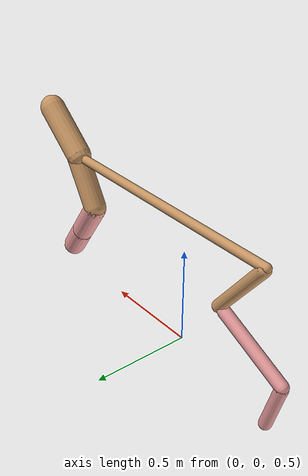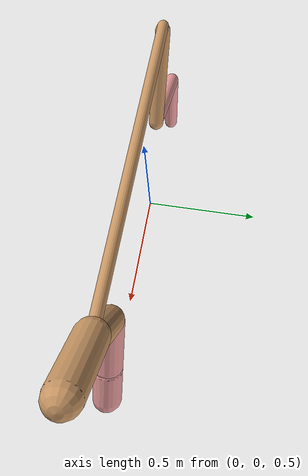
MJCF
<mujoco model="cheetah">
  <compiler angle="radian" coordinate="local" inertiafromgeom="true" settotalmass="14" />
  <default>
    <joint armature=".1" damping=".01" limited="true" solimplimit="0 .8 .03" solreflimit=".02 1" stiffness="8" />
    <geom conaffinity="0" condim="3" contype="1" friction="0.8 .1 .1" rgba="0.8 0.6 .4 1" solimp="0.0 0.8 0.01" solref="0.02 1" />
    <motor ctrllimited="true" ctrlrange="-1 1" />
  </default>
  <size nstack="300000" nuser_geom="1" />
  <option gravity="0 0 -9.81" timestep="0.01" />
  <worldbody>
    <body name="torso" pos="0.0 0.0 1.1693601767825887">
      <joint armature="0" axis="1 0 0" damping="0" limited="false" name="ignorex" pos="0 0 0" stiffness="0" type="slide" />
      <joint armature="0" axis="0 0 1" damping="0" limited="false" name="ignorez" pos="0 0 0" stiffness="0" type="slide" />
      <joint armature="0" axis="0 1 0" damping="0" limited="false" name="ignorey" pos="0 0 0" stiffness="0" type="hinge" />
      <geom fromto="-0.5 0.0 0.0 0.8610697051529039 0.0 0.0" name="torso" size="0.023515139700764274" type="capsule" />
      <geom axisangle="0 1 0 .87" name="head" pos="0.9610697051529039 0.0 0.1" size="0.06388832571157023 0.15" type="capsule" />

      <body name="bthigh" pos="-.5 0 0">
        <joint axis="0 1 0" damping="6" name="bthigh" pos="0 0 0" range="-.52 1.05" stiffness="240" type="hinge" />
        <geom axisangle="0 1 0 -3.8" name="bthigh" pos="0.1351654430697504 0.0 -0.1757150759906755" size="0.0322 0.20267561494362318" type="capsule" />
        <body name="bshin" pos="0.2303308861395008 0.0 -0.341430151981351">
          <joint axis="0 1 0" damping="4.5" name="bshin" pos="0 0 0" range="-.785 .785" stiffness="180" type="hinge" />
          <geom axisangle="0 1 0 -2.03" name="bshin" pos="-0.19336548785850105 0.0 -0.09668274392925053" rgba="0.9 0.6 0.6 1" size="0.0322 0.209664429252024" type="capsule" />
          <body name="bfoot" pos="-0.3867309757170021 0.0 -0.19336548785850105">
            <joint axis="0 1 0" damping="3" name="bfoot" pos="0 0 0" range="-.4 .785" stiffness="120" type="hinge" />
            <geom axisangle="0 1 0 -.27" name="bfoot" pos="0.04104752695775661 0.0 -0.13272033716341303" rgba="0.9 0.6 0.6 1" size="0.0322 0.13138970899793503" type="capsule" />
            <inertial mass="10" />
          </body>
        </body>
      </body>
      <body name="fthigh" pos="0.8610697051529039 0.0 0.0">
        <joint axis="0 1 0" damping="4.5" name="fthigh" pos="0 0 0" range="-1.5 0.8" stiffness="180" type="hinge" />
        <geom axisangle="0 1 0 .52" name="fthigh" pos="-0.07421527803167946 0.0 -0.1272261909114505" size="0.058280035304373035 0.14136578770786642" type="capsule" />
        <body name="fshin" pos="-0.14843055606335892 0.0 -0.254452381822901">
          <joint axis="0 1 0" damping="3" name="fshin" pos="0 0 0" range="-1.2 1.1" stiffness="120" type="hinge" />
          <geom axisangle="0 1 0 -.6" name="fshin" pos="0.06890374064596122 0.0 -0.09540517935594629" rgba="0.9 0.6 0.6 1" size="0.058280035304373035 0.11266746990251007" type="capsule" />
          <body name="ffoot" pos="0.13780748129192244 0.0 -0.19081035871189259">
            <joint axis="0 1 0" damping="1.5" name="ffoot" pos="0 0 0" range="-3.1 -0.3" stiffness="60" type="hinge" />
            <geom axisangle="0 1 0 -.6" name="ffoot" pos="0.047380980637024166 0.0 -0.07370374765759316" rgba="0.9 0.6 0.6 1" size="0.058280035304373035 0.07440304616203497" type="capsule" />
            <inertial mass="10" />
          </body>
        </body>
      </body>
    </body>
  </worldbody>
  <actuator>
    <motor gear="120" joint="bthigh" name="bthigh" />
    <motor gear="90" joint="bshin" name="bshin" />
    <motor gear="60" joint="bfoot" name="bfoot" />
    <motor gear="120" joint="fthigh" name="fthigh" />
    <motor gear="60" joint="fshin" name="fshin" />
    <motor gear="30" joint="ffoot" name="ffoot" />
  </actuator>
</mujoco>
